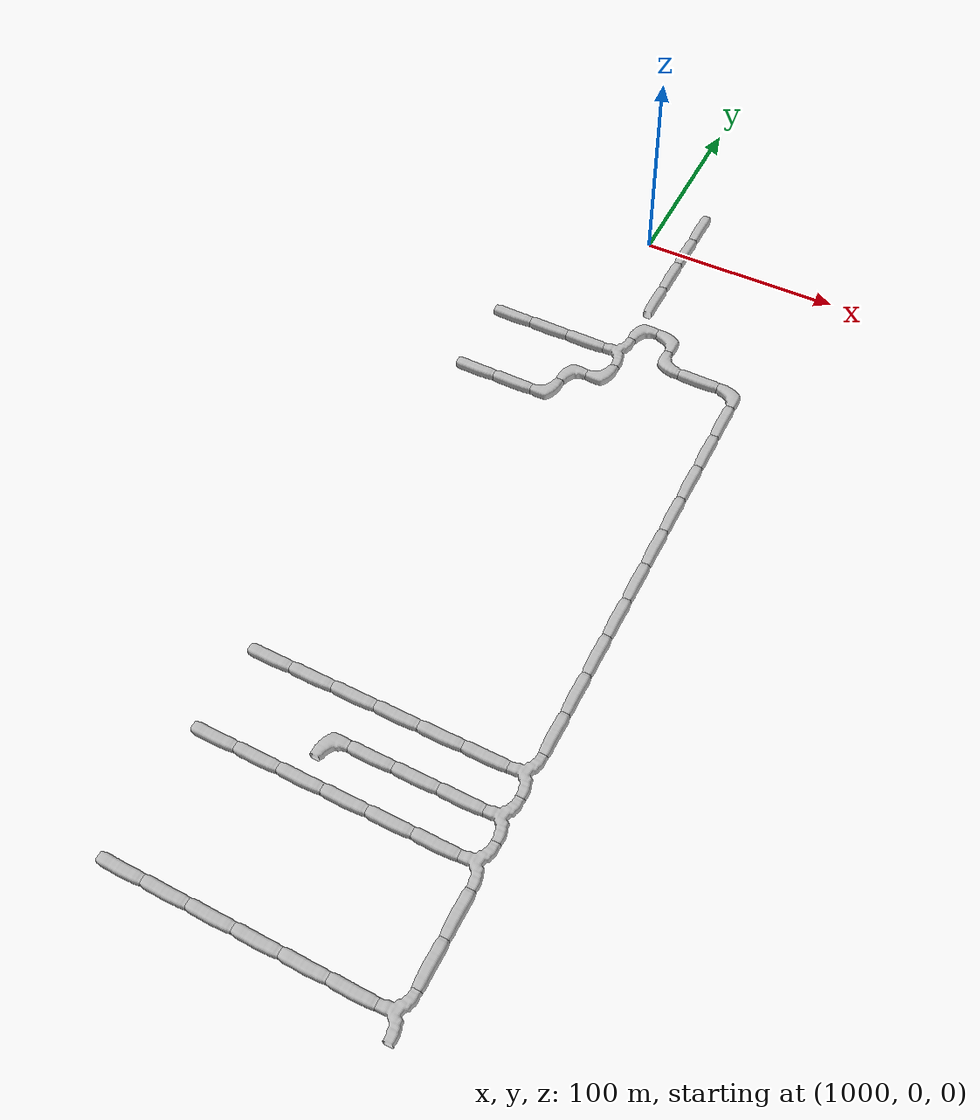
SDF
<sdf version="1.6">
 <world name="cave_32000_2">
  <include>
   <static>true</static>
   <name>cave_48_-17</name>
   <pose>960 -340 0 0 0 1.5707963267948966</pose>
   <uri>model://cave_straight_20m</uri>
  </include>
  <include>
   <static>true</static>
   <name>cave_49_-17</name>
   <pose>980 -340 0 0 0 1.5707963267948966</pose>
   <uri>model://cave_straight_20m</uri>
  </include>
  <include>
   <static>true</static>
   <name>cave_50_-17</name>
   <pose>1000 -340 0 0 0 1.5707963267948966</pose>
   <uri>model://cave_straight_20m</uri>
  </include>
  <include>
   <static>true</static>
   <name>cave_51_-17</name>
   <pose>1020 -340 0 0 0 1.5707963267948966</pose>
   <uri>model://cave_straight_20m</uri>
  </include>
  <include>
   <static>true</static>
   <name>cave_52_-17</name>
   <pose>1040 -340 0 0 0 1.5707963267948966</pose>
   <uri>model://cave_straight_20m</uri>
  </include>
  <include>
   <static>true</static>
   <name>cave_53_-17</name>
   <pose>1060 -340 0 0 0 1.5707963267948966</pose>
   <uri>model://cave_straight_20m</uri>
  </include>
  <include>
   <static>true</static>
   <name>cave_54_-17</name>
   <pose>1080 -340 0 0 0 1.5707963267948966</pose>
   <uri>model://cave_3way_20m</uri>
  </include>
  <include>
   <static>true</static>
   <name>cave_54_-18</name>
   <pose>1080 -360 0 0 0 0.0</pose>
   <uri>model://cave_straight_20m</uri>
  </include>
  <include>
   <static>true</static>
   <name>cave_54_-19</name>
   <pose>1080 -380 0 0 0 0.0</pose>
   <uri>model://cave_straight_20m</uri>
  </include>
  <include>
   <static>true</static>
   <name>cave_54_-20</name>
   <pose>1080 -400 0 0 0 1.5707963267948966</pose>
   <uri>model://cave_3way_20m</uri>
  </include>
  <include>
   <static>true</static>
   <name>cave_53_-20</name>
   <pose>1060 -400 0 0 0 1.5707963267948966</pose>
   <uri>model://cave_straight_20m</uri>
  </include>
  <include>
   <static>true</static>
   <name>cave_52_-20</name>
   <pose>1040 -400 0 0 0 1.5707963267948966</pose>
   <uri>model://cave_straight_20m</uri>
  </include>
  <include>
   <static>true</static>
   <name>cave_51_-20</name>
   <pose>1020 -400 0 0 0 1.5707963267948966</pose>
   <uri>model://cave_straight_20m</uri>
  </include>
  <include>
   <static>true</static>
   <name>cave_50_-20</name>
   <pose>1000 -400 0 0 0 1.5707963267948966</pose>
   <uri>model://cave_straight_20m</uri>
  </include>
  <include>
   <static>true</static>
   <name>cave_49_-20</name>
   <pose>980 -400 0 0 0 1.5707963267948966</pose>
   <uri>model://cave_straight_20m</uri>
  </include>
  <include>
   <static>true</static>
   <name>cave_48_-20</name>
   <pose>960 -400 0 0 0 1.5707963267948966</pose>
   <uri>model://cave_straight_20m</uri>
  </include>
  <include>
   <static>true</static>
   <name>cave_54_-16</name>
   <pose>1080 -320 0 0 0 1.5707963267948966</pose>
   <uri>model://cave_3way_20m</uri>
  </include>
  <include>
   <static>true</static>
   <name>cave_53_-16</name>
   <pose>1060 -320 0 0 0 1.5707963267948966</pose>
   <uri>model://cave_straight_20m</uri>
  </include>
  <include>
   <static>true</static>
   <name>cave_52_-16</name>
   <pose>1040 -320 0 0 0 1.5707963267948966</pose>
   <uri>model://cave_straight_20m</uri>
  </include>
  <include>
   <static>true</static>
   <name>cave_51_-16</name>
   <pose>1020 -320 0 0 0 1.5707963267948966</pose>
   <uri>model://cave_straight_20m</uri>
  </include>
  <include>
   <static>true</static>
   <name>cave_50_-16</name>
   <pose>1000 -320 0 0 0 -1.5707963267948966</pose>
   <uri>model://cave_L_20m</uri>
  </include>
  <include>
   <static>true</static>
   <name>cave_54_-15</name>
   <pose>1080 -300 0 0 0 1.5707963267948966</pose>
   <uri>model://cave_3way_20m</uri>
  </include>
  <include>
   <static>true</static>
   <name>cave_53_-15</name>
   <pose>1060 -300 0 0 0 1.5707963267948966</pose>
   <uri>model://cave_straight_20m</uri>
  </include>
  <include>
   <static>true</static>
   <name>cave_52_-15</name>
   <pose>1040 -300 0 0 0 1.5707963267948966</pose>
   <uri>model://cave_straight_20m</uri>
  </include>
  <include>
   <static>true</static>
   <name>cave_51_-15</name>
   <pose>1020 -300 0 0 0 1.5707963267948966</pose>
   <uri>model://cave_straight_20m</uri>
  </include>
  <include>
   <static>true</static>
   <name>cave_50_-15</name>
   <pose>1000 -300 0 0 0 1.5707963267948966</pose>
   <uri>model://cave_straight_20m</uri>
  </include>
  <include>
   <static>true</static>
   <name>cave_49_-15</name>
   <pose>980 -300 0 0 0 1.5707963267948966</pose>
   <uri>model://cave_straight_20m</uri>
  </include>
  <include>
   <static>true</static>
   <name>cave_48_-15</name>
   <pose>960 -300 0 0 0 1.5707963267948966</pose>
   <uri>model://cave_straight_20m</uri>
  </include>
  <include>
   <static>true</static>
   <name>cave_54_-14</name>
   <pose>1080 -280 0 0 0 0.0</pose>
   <uri>model://cave_straight_20m</uri>
  </include>
  <include>
   <static>true</static>
   <name>cave_54_-13</name>
   <pose>1080 -260 0 0 0 0.0</pose>
   <uri>model://cave_straight_20m</uri>
  </include>
  <include>
   <static>true</static>
   <name>cave_54_-12</name>
   <pose>1080 -240 0 0 0 0.0</pose>
   <uri>model://cave_straight_20m</uri>
  </include>
  <include>
   <static>true</static>
   <name>cave_54_-11</name>
   <pose>1080 -220 0 0 0 0.0</pose>
   <uri>model://cave_straight_20m</uri>
  </include>
  <include>
   <static>true</static>
   <name>cave_54_-10</name>
   <pose>1080 -200 0 0 0 0.0</pose>
   <uri>model://cave_straight_20m</uri>
  </include>
  <include>
   <static>true</static>
   <name>cave_54_-9</name>
   <pose>1080 -180 0 0 0 0.0</pose>
   <uri>model://cave_straight_20m</uri>
  </include>
  <include>
   <static>true</static>
   <name>cave_54_-8</name>
   <pose>1080 -160 0 0 0 0.0</pose>
   <uri>model://cave_straight_20m</uri>
  </include>
  <include>
   <static>true</static>
   <name>cave_54_-7</name>
   <pose>1080 -140 0 0 0 0.0</pose>
   <uri>model://cave_straight_20m</uri>
  </include>
  <include>
   <static>true</static>
   <name>cave_54_-6</name>
   <pose>1080 -120 0 0 0 0.0</pose>
   <uri>model://cave_straight_20m</uri>
  </include>
  <include>
   <static>true</static>
   <name>cave_54_-5</name>
   <pose>1080 -100 0 0 0 0.0</pose>
   <uri>model://cave_straight_20m</uri>
  </include>
  <include>
   <static>true</static>
   <name>cave_54_-4</name>
   <pose>1080 -80 0 0 0 3.141592653589793</pose>
   <uri>model://cave_L_20m</uri>
  </include>
  <include>
   <static>true</static>
   <name>cave_53_-4</name>
   <pose>1060 -80 0 0 0 1.5707963267948966</pose>
   <uri>model://cave_straight_20m</uri>
  </include>
  <include>
   <static>true</static>
   <name>cave_52_-4</name>
   <pose>1040 -80 0 0 0 0.0</pose>
   <uri>model://cave_L_20m</uri>
  </include>
  <include>
   <static>true</static>
   <name>cave_52_-3</name>
   <pose>1040 -60 0 0 0 3.141592653589793</pose>
   <uri>model://cave_L_20m</uri>
  </include>
  <include>
   <static>true</static>
   <name>cave_51_-3</name>
   <pose>1020 -60 0 0 0 -1.5707963267948966</pose>
   <uri>model://cave_L_20m</uri>
  </include>
  <include>
   <static>true</static>
   <name>cave_51_-4</name>
   <pose>1020 -80 0 0 0 1.5707963267948966</pose>
   <uri>model://cave_3way_20m</uri>
  </include>
  <include>
   <static>true</static>
   <name>cave_51_-5</name>
   <pose>1020 -100 0 0 0 1.5707963267948966</pose>
   <uri>model://cave_L_20m</uri>
  </include>
  <include>
   <static>true</static>
   <name>cave_50_-5</name>
   <pose>1000 -100 0 0 0 -1.5707963267948966</pose>
   <uri>model://cave_L_20m</uri>
  </include>
  <include>
   <static>true</static>
   <name>cave_50_-6</name>
   <pose>1000 -120 0 0 0 1.5707963267948966</pose>
   <uri>model://cave_L_20m</uri>
  </include>
  <include>
   <static>true</static>
   <name>cave_49_-6</name>
   <pose>980 -120 0 0 0 1.5707963267948966</pose>
   <uri>model://cave_straight_20m</uri>
  </include>
  <include>
   <static>true</static>
   <name>cave_48_-6</name>
   <pose>960 -120 0 0 0 1.5707963267948966</pose>
   <uri>model://cave_straight_20m</uri>
  </include>
  <include>
   <static>true</static>
   <name>cave_50_-4</name>
   <pose>1000 -80 0 0 0 1.5707963267948966</pose>
   <uri>model://cave_straight_20m</uri>
  </include>
  <include>
   <static>true</static>
   <name>cave_49_-4</name>
   <pose>980 -80 0 0 0 1.5707963267948966</pose>
   <uri>model://cave_straight_20m</uri>
  </include>
  <include>
   <static>true</static>
   <name>cave_48_-4</name>
   <pose>960 -80 0 0 0 1.5707963267948966</pose>
   <uri>model://cave_straight_20m</uri>
  </include>
  <include>
   <static>true</static>
   <name>cave_51_1</name>
   <pose>1020 20 0 0 0 0.0</pose>
   <uri>model://cave_straight_20m</uri>
  </include>
  <include>
   <static>true</static>
   <name>cave_51_0</name>
   <pose>1020 0 0 0 0 0.0</pose>
   <uri>model://cave_straight_20m</uri>
  </include>
  <include>
   <static>true</static>
   <name>cave_51_-1</name>
   <pose>1020 -20 0 0 0 0.0</pose>
   <uri>model://cave_straight_20m</uri>
  </include>
  <include>
   <static>true</static>
   <name>cave_51_-2</name>
   <pose>1020 -40 0 0 0 0.0</pose>
   <uri>model://cave_straight_20m</uri>
  </include>
 </world>
</sdf>
